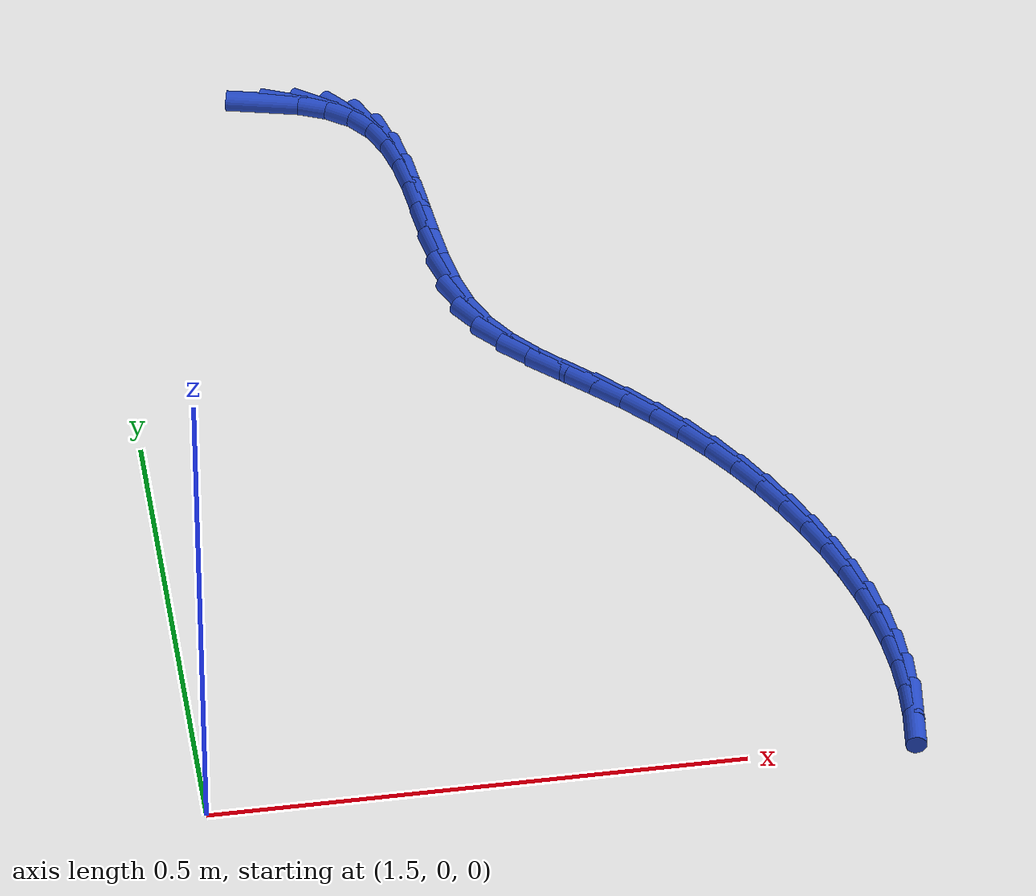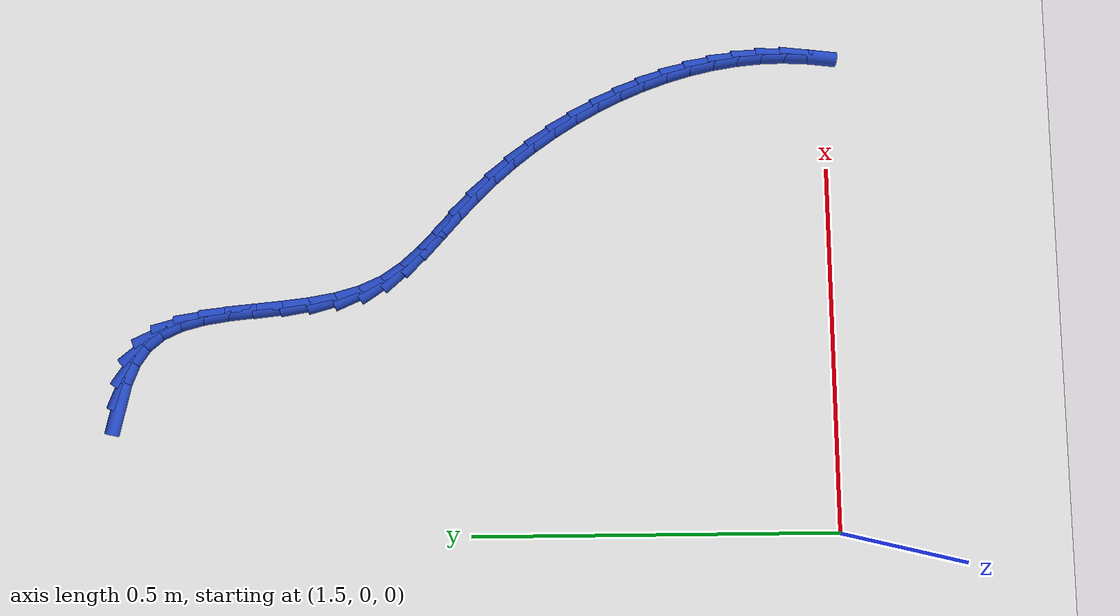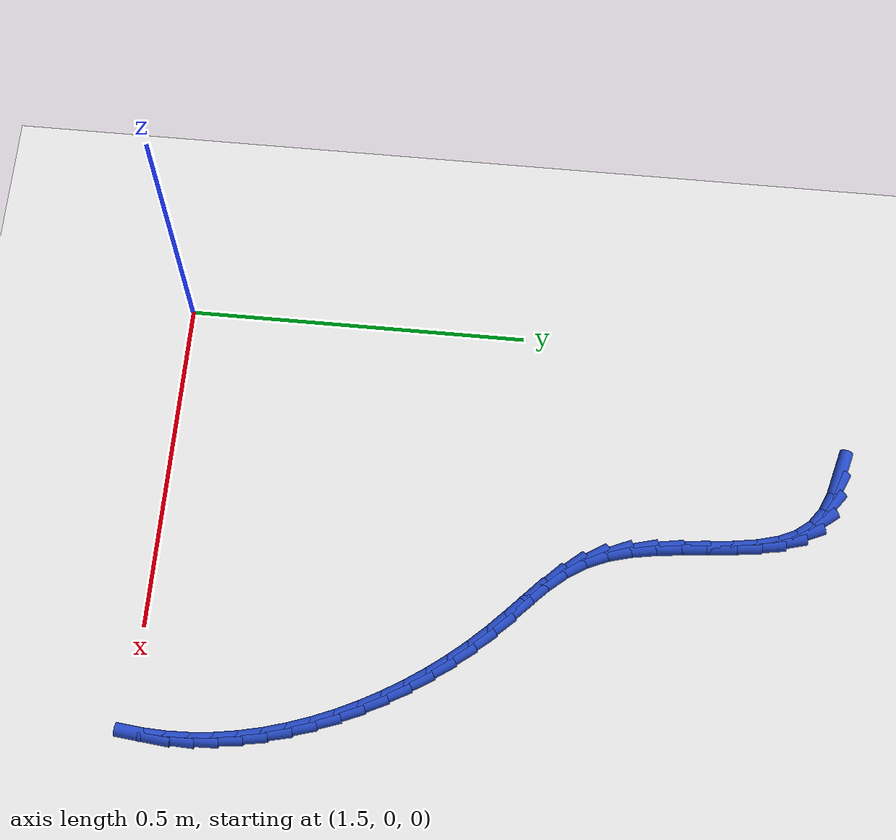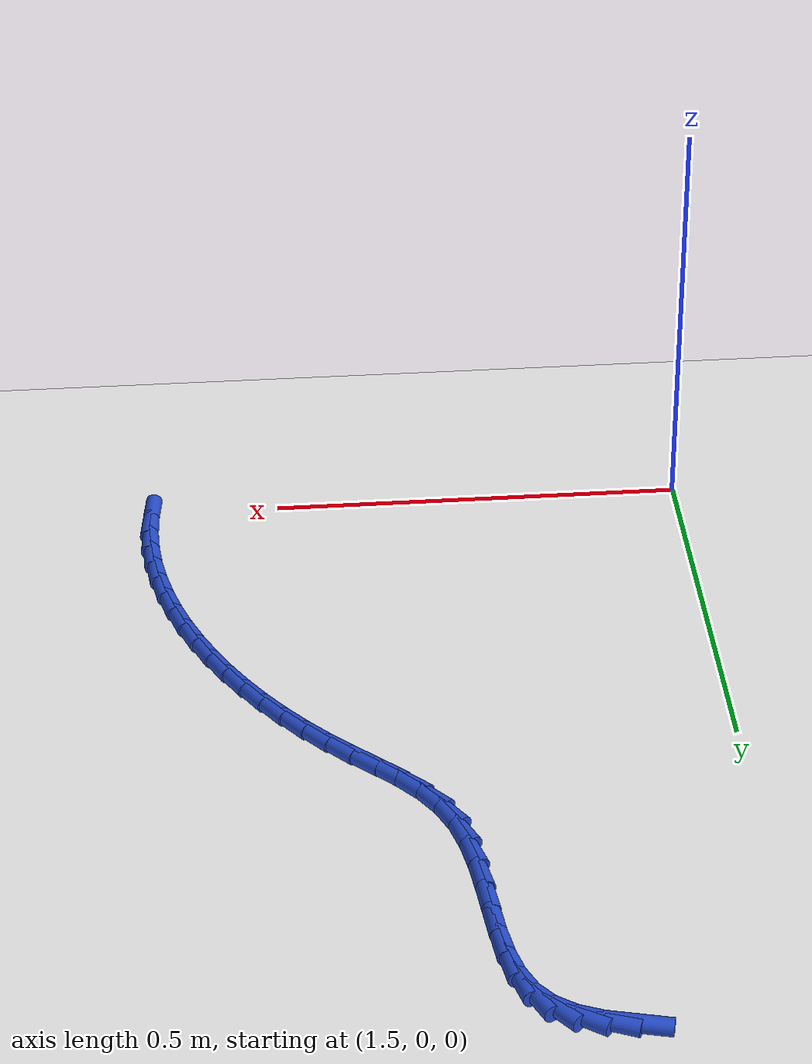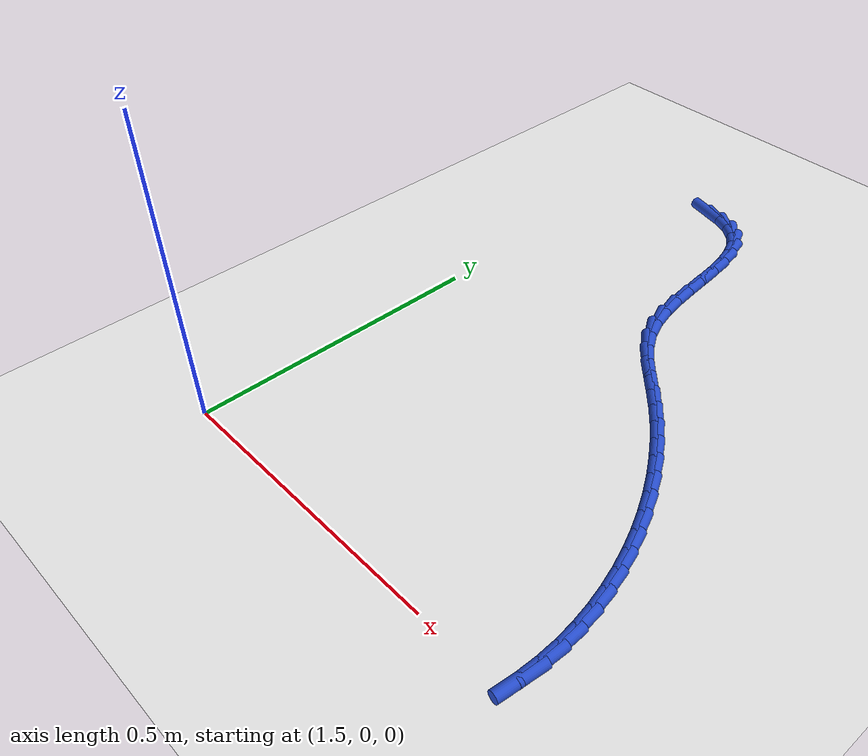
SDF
<sdf version="1.6">
 <world name="default">
  <model name="ground_plane">
   <static>1</static>
   <link name="link">
    <collision name="collision">
     <geometry><plane><normal>0 0 1</normal><size>100 100</size></plane></geometry>
     <surface><friction><ode><mu>100</mu><mu2>50</mu2></ode></friction></surface>
    </collision>
    <visual name="visual">
     <cast_shadows>0</cast_shadows>
     <geometry><plane><normal>0 0 1</normal><size>100 100</size></plane></geometry>
     <material>
      <script><uri>file://media/materials/scripts/gazebo.material</uri><name>Gazebo/WhiteGlow</name></script>
     </material>
    </visual>
   </link>
  </model>
  <model name="line">
   <link name="link_68">
    <pose>1.6822798371540089 0.9778334605273318 0.01 0 1.57 -0.23673860399778476</pose>
    <collision name="collision">
     <geometry><cylinder><radius>0.01</radius><length>0.08</length></cylinder></geometry>
    </collision>
    <visual name="visual">
     <material>
      <script><name>Gazebo/Blue</name><uri>file://media/materials/scripts/gazebo.material</uri></script>
     </material>
     <geometry><cylinder><radius>0.01</radius><length>0.08</length></cylinder></geometry>
    </visual>
   </link>
   <link name="link_69">
    <pose>1.713480512796415 0.970305900084614 0.01 0 1.57 -0.3930271834001193</pose>
    <collision name="collision">
     <geometry><cylinder><radius>0.01</radius><length>0.08</length></cylinder></geometry>
    </collision>
    <visual name="visual">
     <material>
      <script><name>Gazebo/Blue</name><uri>file://media/materials/scripts/gazebo.material</uri></script>
     </material>
     <geometry><cylinder><radius>0.01</radius><length>0.08</length></cylinder></geometry>
    </visual>
   </link>
   <link name="link_70">
    <pose>1.7407797382366006 0.9589876955510737 0.01 0 1.57 -0.6138983036109257</pose>
    <collision name="collision">
     <geometry><cylinder><radius>0.01</radius><length>0.08</length></cylinder></geometry>
    </collision>
    <visual name="visual">
     <material>
      <script><name>Gazebo/Blue</name><uri>file://media/materials/scripts/gazebo.material</uri></script>
     </material>
     <geometry><cylinder><radius>0.01</radius><length>0.08</length></cylinder></geometry>
    </visual>
   </link>
   <link name="link_71">
    <pose>1.7634076443402291 0.9430409656191244 0.01 0 1.57 -0.8915786656370142</pose>
    <collision name="collision">
     <geometry><cylinder><radius>0.01</radius><length>0.08</length></cylinder></geometry>
    </collision>
    <visual name="visual">
     <material>
      <script><name>Gazebo/Blue</name><uri>file://media/materials/scripts/gazebo.material</uri></script>
     </material>
     <geometry><cylinder><radius>0.01</radius><length>0.08</length></cylinder></geometry>
    </visual>
   </link>
   <link name="link_72">
    <pose>1.7806516005416817 0.9216827365124773 0.01 0 1.57 -1.1419852837914442</pose>
    <collision name="collision">
     <geometry><cylinder><radius>0.01</radius><length>0.08</length></cylinder></geometry>
    </collision>
    <visual name="visual">
     <material>
      <script><name>Gazebo/Blue</name><uri>file://media/materials/scripts/gazebo.material</uri></script>
     </material>
     <geometry><cylinder><radius>0.01</radius><length>0.08</length></cylinder></geometry>
    </visual>
   </link>
   <link name="link_73">
    <pose>1.7928064010144664 0.8950964318794227 0.01 0 1.57 -1.3099965701499854</pose>
    <collision name="collision">
     <geometry><cylinder><radius>0.01</radius><length>0.08</length></cylinder></geometry>
    </collision>
    <visual name="visual">
     <material>
      <script><name>Gazebo/Blue</name><uri>file://media/materials/scripts/gazebo.material</uri></script>
     </material>
     <geometry><cylinder><radius>0.01</radius><length>0.08</length></cylinder></geometry>
    </visual>
   </link>
   <link name="link_74">
    <pose>1.8010276375303746 0.8642912170338591 0.01 0 1.57 -1.411200100067711</pose>
    <collision name="collision">
     <geometry><cylinder><radius>0.01</radius><length>0.08</length></cylinder></geometry>
    </collision>
    <visual name="visual">
     <material>
      <script><name>Gazebo/Blue</name><uri>file://media/materials/scripts/gazebo.material</uri></script>
     </material>
     <geometry><cylinder><radius>0.01</radius><length>0.08</length></cylinder></geometry>
    </visual>
   </link>
   <link name="link_75">
    <pose>1.80649858737193 0.8303028153095855 0.01 0 1.57 -1.4631786586444018</pose>
    <collision name="collision">
     <geometry><cylinder><radius>0.01</radius><length>0.08</length></cylinder></geometry>
    </collision>
    <visual name="visual">
     <material>
      <script><name>Gazebo/Blue</name><uri>file://media/materials/scripts/gazebo.material</uri></script>
     </material>
     <geometry><cylinder><radius>0.01</radius><length>0.08</length></cylinder></geometry>
    </visual>
   </link>
   <link name="link_76">
    <pose>1.8104025278216558 0.7941669500404012 0.01 0 1.57 -1.4765678929889536</pose>
    <collision name="collision">
     <geometry><cylinder><radius>0.01</radius><length>0.08</length></cylinder></geometry>
    </collision>
    <visual name="visual">
     <material>
      <script><name>Gazebo/Blue</name><uri>file://media/materials/scripts/gazebo.material</uri></script>
     </material>
     <geometry><cylinder><radius>0.01</radius><length>0.08</length></cylinder></geometry>
    </visual>
   </link>
   <link name="link_77">
    <pose>1.8139227361620747 0.7569193445601042 0.01 0 1.57 -1.455571202439787</pose>
    <collision name="collision">
     <geometry><cylinder><radius>0.01</radius><length>0.08</length></cylinder></geometry>
    </collision>
    <visual name="visual">
     <material>
      <script><name>Gazebo/Blue</name><uri>file://media/materials/scripts/gazebo.material</uri></script>
     </material>
     <geometry><cylinder><radius>0.01</radius><length>0.08</length></cylinder></geometry>
    </visual>
   </link>
   <link name="link_78">
    <pose>1.8182424896757101 0.7195957222024938 0.01 0 1.57 -1.399181681682778</pose>
    <collision name="collision">
     <geometry><cylinder><radius>0.01</radius><length>0.08</length></cylinder></geometry>
    </collision>
    <visual name="visual">
     <material>
      <script><name>Gazebo/Blue</name><uri>file://media/materials/scripts/gazebo.material</uri></script>
     </material>
     <geometry><cylinder><radius>0.01</radius><length>0.08</length></cylinder></geometry>
    </visual>
   </link>
   <link name="link_79">
    <pose>1.8245450656450857 0.6832318063013691 0.01 0 1.57 -1.30196106224217</pose>
    <collision name="collision">
     <geometry><cylinder><radius>0.01</radius><length>0.08</length></cylinder></geometry>
    </collision>
    <visual name="visual">
     <material>
      <script><name>Gazebo/Blue</name><uri>file://media/materials/scripts/gazebo.material</uri></script>
     </material>
     <geometry><cylinder><radius>0.01</radius><length>0.08</length></cylinder></geometry>
    </visual>
   </link>
   <link name="link_80">
    <pose>1.8340137413527242 0.6488633201905285 0.01 0 1.57 -1.155668962067542</pose>
    <collision name="collision">
     <geometry><cylinder><radius>0.01</radius><length>0.08</length></cylinder></geometry>
    </collision>
    <visual name="visual">
     <material>
      <script><name>Gazebo/Blue</name><uri>file://media/materials/scripts/gazebo.material</uri></script>
     </material>
     <geometry><cylinder><radius>0.01</radius><length>0.08</length></cylinder></geometry>
    </visual>
   </link>
   <link name="link_81">
    <pose>1.8478271319288448 0.6175220194337482 0.01 0 1.57 -0.9829867990090391</pose>
    <collision name="collision">
     <geometry><cylinder><radius>0.01</radius><length>0.08</length></cylinder></geometry>
    </collision>
    <visual name="visual">
     <material>
      <script><name>Gazebo/Blue</name><uri>file://media/materials/scripts/gazebo.material</uri></script>
     </material>
     <geometry><cylinder><radius>0.01</radius><length>0.08</length></cylinder></geometry>
    </visual>
   </link>
   <link name="link_82">
    <pose>1.8664261446513937 0.5896118261584923 0.01 0 1.57 -0.850229565889431</pose>
    <collision name="collision">
     <geometry><cylinder><radius>0.01</radius><length>0.08</length></cylinder></geometry>
    </collision>
    <visual name="visual">
     <material>
      <script><name>Gazebo/Blue</name><uri>file://media/materials/scripts/gazebo.material</uri></script>
     </material>
     <geometry><cylinder><radius>0.01</radius><length>0.08</length></cylinder></geometry>
    </visual>
   </link>
   <link name="link_83">
    <pose>1.8887145439903514 0.564228462168405 0.01 0 1.57 -0.7696604079919185</pose>
    <collision name="collision">
     <geometry><cylinder><radius>0.01</radius><length>0.08</length></cylinder></geometry>
    </collision>
    <visual name="visual">
     <material>
      <script><name>Gazebo/Blue</name><uri>file://media/materials/scripts/gazebo.material</uri></script>
     </material>
     <geometry><cylinder><radius>0.01</radius><length>0.08</length></cylinder></geometry>
    </visual>
   </link>
   <link name="link_84">
    <pose>1.9134039866016994 0.5403041540452297 0.01 0 1.57 -0.7394366532679617</pose>
    <collision name="collision">
     <geometry><cylinder><radius>0.01</radius><length>0.08</length></cylinder></geometry>
    </collision>
    <visual name="visual">
     <material>
      <script><name>Gazebo/Blue</name><uri>file://media/materials/scripts/gazebo.material</uri></script>
     </material>
     <geometry><cylinder><radius>0.01</radius><length>0.08</length></cylinder></geometry>
    </visual>
   </link>
   <link name="link_85">
    <pose>1.9392061291414204 0.5167711283707099 0.01 0 1.57 -0.7568520560450568</pose>
    <collision name="collision">
     <geometry><cylinder><radius>0.01</radius><length>0.08</length></cylinder></geometry>
    </collision>
    <visual name="visual">
     <material>
      <script><name>Gazebo/Blue</name><uri>file://media/materials/scripts/gazebo.material</uri></script>
     </material>
     <geometry><cylinder><radius>0.01</radius><length>0.08</length></cylinder></geometry>
    </visual>
   </link>
   <link name="link_86">
    <pose>1.9648356520629668 0.49256461678905245 0.01 0 1.57 -0.8058607050523074</pose>
    <collision name="collision">
     <geometry><cylinder><radius>0.01</radius><length>0.08</length></cylinder></geometry>
    </collision>
    <visual name="visual">
     <material>
      <script><name>Gazebo/Blue</name><uri>file://media/materials/scripts/gazebo.material</uri></script>
     </material>
     <geometry><cylinder><radius>0.01</radius><length>0.08</length></cylinder></geometry>
    </visual>
   </link>
   <link name="link_87">
    <pose>1.9893821389936845 0.466992431273041 0.01 0 1.57 -0.8573137992449961</pose>
    <collision name="collision">
     <geometry><cylinder><radius>0.01</radius><length>0.08</length></cylinder></geometry>
    </collision>
    <visual name="visual">
     <material>
      <script><name>Gazebo/Blue</name><uri>file://media/materials/scripts/gazebo.material</uri></script>
     </material>
     <geometry><cylinder><radius>0.01</radius><length>0.08</length></cylinder></geometry>
    </visual>
   </link>
   <link name="link_88">
    <pose>2.012668195869549 0.4400908644049102 0.01 0 1.57 -0.9082124079403839</pose>
    <collision name="collision">
     <geometry><cylinder><radius>0.01</radius><length>0.08</length></cylinder></geometry>
    </collision>
    <visual name="visual">
     <material>
      <script><name>Gazebo/Blue</name><uri>file://media/materials/scripts/gazebo.material</uri></script>
     </material>
     <geometry><cylinder><radius>0.01</radius><length>0.08</length></cylinder></geometry>
    </visual>
   </link>
   <link name="link_89">
    <pose>2.034601336766751 0.41198059082867455 0.01 0 1.57 -0.9589466752847539</pose>
    <collision name="collision">
     <geometry><cylinder><radius>0.01</radius><length>0.08</length></cylinder></geometry>
    </collision>
    <visual name="visual">
     <material>
      <script><name>Gazebo/Blue</name><uri>file://media/materials/scripts/gazebo.material</uri></script>
     </material>
     <geometry><cylinder><radius>0.01</radius><length>0.08</length></cylinder></geometry>
    </visual>
   </link>
   <link name="link_90">
    <pose>2.0550890757614835 0.3827822851883494 0.01 0 1.57 -1.0099043871749147</pose>
    <collision name="collision">
     <geometry><cylinder><radius>0.01</radius><length>0.08</length></cylinder></geometry>
    </collision>
    <visual name="visual">
     <material>
      <script><name>Gazebo/Blue</name><uri>file://media/materials/scripts/gazebo.material</uri></script>
     </material>
     <geometry><cylinder><radius>0.01</radius><length>0.08</length></cylinder></geometry>
    </visual>
   </link>
   <link name="link_91">
    <pose>2.074038926929937 0.35261662212794914 0.01 0 1.57 -1.0614731920158882</pose>
    <collision name="collision">
     <geometry><cylinder><radius>0.01</radius><length>0.08</length></cylinder></geometry>
    </collision>
    <visual name="visual">
     <material>
      <script><name>Gazebo/Blue</name><uri>file://media/materials/scripts/gazebo.material</uri></script>
     </material>
     <geometry><cylinder><radius>0.01</radius><length>0.08</length></cylinder></geometry>
    </visual>
   </link>
   <link name="link_92">
    <pose>2.091358404348307 0.3216042762914893 0.01 0 1.57 -1.1140424438328203</pose>
    <collision name="collision">
     <geometry><cylinder><radius>0.01</radius><length>0.08</length></cylinder></geometry>
    </collision>
    <visual name="visual">
     <material>
      <script><name>Gazebo/Blue</name><uri>file://media/materials/scripts/gazebo.material</uri></script>
     </material>
     <geometry><cylinder><radius>0.01</radius><length>0.08</length></cylinder></geometry>
    </visual>
   </link>
   <link name="link_93">
    <pose>2.1069550220927833 0.2898659223229845 0.01 0 1.57 -1.1680041009051434</pose>
    <collision name="collision">
     <geometry><cylinder><radius>0.01</radius><length>0.08</length></cylinder></geometry>
    </collision>
    <visual name="visual">
     <material>
      <script><name>Gazebo/Blue</name><uri>file://media/materials/scripts/gazebo.material</uri></script>
     </material>
     <geometry><cylinder><radius>0.01</radius><length>0.08</length></cylinder></geometry>
    </visual>
   </link>
   <link name="link_94">
    <pose>2.120736294239559 0.25752223486645004 0.01 0 1.57 -1.2237520192517908</pose>
    <collision name="collision">
     <geometry><cylinder><radius>0.01</radius><length>0.08</length></cylinder></geometry>
    </collision>
    <visual name="visual">
     <material>
      <script><name>Gazebo/Blue</name><uri>file://media/materials/scripts/gazebo.material</uri></script>
     </material>
     <geometry><cylinder><radius>0.01</radius><length>0.08</length></cylinder></geometry>
    </visual>
   </link>
   <link name="link_95">
    <pose>2.132609734864825 0.2246938885659005 0.01 0 1.57 -1.2816788361362756</pose>
    <collision name="collision">
     <geometry><cylinder><radius>0.01</radius><length>0.08</length></cylinder></geometry>
    </collision>
    <visual name="visual">
     <material>
      <script><name>Gazebo/Blue</name><uri>file://media/materials/scripts/gazebo.material</uri></script>
     </material>
     <geometry><cylinder><radius>0.01</radius><length>0.08</length></cylinder></geometry>
    </visual>
   </link>
   <link name="link_96">
    <pose>2.142482858044775 0.19150155806535132 0.01 0 1.57 -1.3421694686659906</pose>
    <collision name="collision">
     <geometry><cylinder><radius>0.01</radius><length>0.08</length></cylinder></geometry>
    </collision>
    <visual name="visual">
     <material>
      <script><name>Gazebo/Blue</name><uri>file://media/materials/scripts/gazebo.material</uri></script>
     </material>
     <geometry><cylinder><radius>0.01</radius><length>0.08</length></cylinder></geometry>
    </visual>
   </link>
   <link name="link_97">
    <pose>2.1502631778556003 0.15806591800881686 0.01 0 1.57 -1.4055901067615015</pose>
    <collision name="collision">
     <geometry><cylinder><radius>0.01</radius><length>0.08</length></cylinder></geometry>
    </collision>
    <visual name="visual">
     <material>
      <script><name>Gazebo/Blue</name><uri>file://media/materials/scripts/gazebo.material</uri></script>
     </material>
     <geometry><cylinder><radius>0.01</radius><length>0.08</length></cylinder></geometry>
    </visual>
   </link>
   <link name="link_98">
    <pose>2.1558582083734943 0.12450764304031225 0.01 0 1.57 -1.4722715504533472</pose>
    <collision name="collision">
     <geometry><cylinder><radius>0.01</radius><length>0.08</length></cylinder></geometry>
    </collision>
    <visual name="visual">
     <material>
      <script><name>Gazebo/Blue</name><uri>file://media/materials/scripts/gazebo.material</uri></script>
     </material>
     <geometry><cylinder><radius>0.01</radius><length>0.08</length></cylinder></geometry>
    </visual>
   </link>
   <link name="link_99">
    <pose>2.159175463674647 0.09094740780385258 0.01 0 1.57 -1.542459273844929</pose>
    <collision name="collision">
     <geometry><cylinder><radius>0.01</radius><length>0.08</length></cylinder></geometry>
    </collision>
    <visual name="visual">
     <material>
      <script><name>Gazebo/Blue</name><uri>file://media/materials/scripts/gazebo.material</uri></script>
     </material>
     <geometry><cylinder><radius>0.01</radius><length>0.08</length></cylinder></geometry>
    </visual>
   </link>
   <link name="link_100">
    <pose>2.160123363890259 0.05750545157705871 0.01 0 1.57 1.52799464465451</pose>
    <collision name="collision">
     <geometry><cylinder><radius>0.01</radius><length>0.08</length></cylinder></geometry>
    </collision>
    <visual name="visual">
     <material>
      <script><name>Gazebo/Blue</name><uri>file://media/materials/scripts/gazebo.material</uri></script>
     </material>
     <geometry><cylinder><radius>0.01</radius><length>0.08</length></cylinder></geometry>
    </visual>
   </link>
   <link name="link_101">
    <pose>2.158699497404982 0.024259167606411086 0.01 0 1.57 1.4612597587429548</pose>
    <collision name="collision">
     <geometry><cylinder><radius>0.01</radius><length>0.08</length></cylinder></geometry>
    </collision>
    <visual name="visual">
     <material>
      <script><name>Gazebo/Blue</name><uri>file://media/materials/scripts/gazebo.material</uri></script>
     </material>
     <geometry><cylinder><radius>0.01</radius><length>0.08</length></cylinder></geometry>
    </visual>
   </link>
  </model>
 </world>
</sdf>
